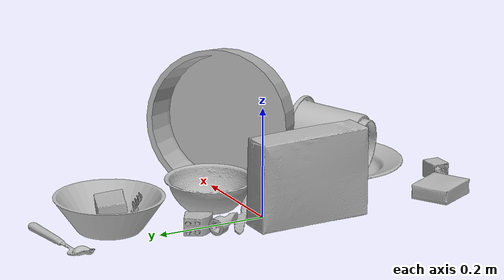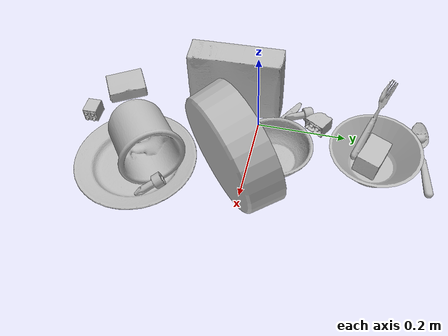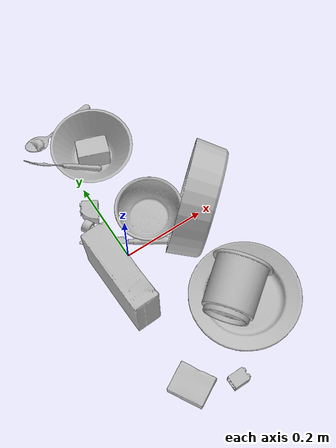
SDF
<sdf version="1.4">
  <world name="default">
    <light name="light1" type="point">
      <pose>0 0 1 0 0 0</pose>
      <diffuse>3 3 3 1</diffuse>
      <specular>3 3 3 1</specular>
    </light>
    <light name="light2" type="point">
      <pose>0 0.5 2 0 0 0</pose>
      <diffuse>1 1 1 1</diffuse>
      <specular>1 1 1 1</specular>
    </light>
    <light name="light3" type="point">
      <pose>0 0.5 2 0 0 0</pose>
      <diffuse>3 3 3 1</diffuse>
      <specular>3 3 3 1</specular>
    </light>
    <scene>
      <ambient>0.7 0.7 0.7</ambient>
    </scene>
    <model name="plate1">
      <link name="link_plate1">
        <collision name="default">
          <geometry>
            <mesh>
              <uri>model://plate/collision_meshes/collision.obj</uri>
              <scale>1.0 1.0 1.0</scale>
            </mesh>
          </geometry>
          <surface>
            <friction>
              <ode>
                <mu>0.5</mu>
                <mu2>0.5</mu2>
              </ode>
            </friction>
          <contact>
        <ode>
            <max_vel>0</max_vel>
            <min_depth>0.0001</min_depth>
            <kp>1e8</kp>
        </ode>
    </contact></surface>
        </collision>
        <visual name="default">
          <geometry>
            <mesh>
              <uri>model://plate/visual_meshes/visual.dae</uri>
              <scale>1.0 1.0 1.0</scale>
            </mesh>
          </geometry>
        </visual>
        <inertial>
          <mass>0.20059238374233246</mass>
          <pose>-0.0006044621695764363 0.00027825910365208983 -0.001056200242601335 0.002218800652723057 -0.0032254723094637602 0.45260588699646775</pose>
          <inertia>
            <ixx>0.00093837525</ixx>
            <iyy>0.0009294</iyy>
            <izz>0.0018353215</izz>
            <ixy>0</ixy>
            <ixz>0</ixz>
            <iyz>0</iyz>
          </inertia>
        </inertial>
      </link>
      <pose>0.1678459495306015 -0.2338000237941742 0.013734722509980202 -3.876773330593613e-05 -7.573728613792608e-05 0.5526787614015215</pose>
    </model>
    <model name="plate2">
      <link name="link_plate2">
        <collision name="default">
          <geometry>
            <mesh>
              <uri>model://pan_tefal/collision_meshes/collision.obj</uri>
              <scale>1.0 1.0 1.0</scale>
            </mesh>
          </geometry>
          <surface>
            <friction>
              <ode>
                <mu>0.5</mu>
                <mu2>0.5</mu2>
              </ode>
            </friction>
          <contact>
        <ode>
            <max_vel>0</max_vel>
            <min_depth>0.0001</min_depth>
            <kp>1e8</kp>
        </ode>
    </contact></surface>
        </collision>
        <visual name="default">
          <geometry>
            <mesh>
              <uri>model://pan_tefal/visual_meshes/visual.dae</uri>
              <scale>1.0 1.0 1.0</scale>
            </mesh>
          </geometry>
        </visual>
        <inertial>
          <mass>0.5801199674606323</mass>
          <pose>-0.00018002555589191616 3.279062366345897e-05 -0.008514936082065105 0.0008190222895173471 -0.0003301392673675887 -0.3318501085377774</pose>
          <inertia>
            <ixx>0.00400454</ixx>
            <iyy>0.004030358</iyy>
            <izz>0.0073715877</izz>
            <ixy>0</ixy>
            <ixz>0</ixz>
            <iyz>0</iyz>
          </inertia>
        </inertial>
      </link>
      <pose>0.1804235428571701 -0.014459180645644665 0.12842433154582977 1.4487375010070391 -0.42360363049310845 -2.34043893500832</pose>
    </model>
    <model name="bowl1">
      <link name="link_bowl1">
        <collision name="default">
          <geometry>
            <mesh>
              <uri>model://bowl/collision_meshes/collision.obj</uri>
              <scale>1.0 1.0 1.0</scale>
            </mesh>
          </geometry>
          <surface>
            <friction>
              <ode>
                <mu>0.5</mu>
                <mu2>0.5</mu2>
              </ode>
            </friction>
          <contact>
        <ode>
            <max_vel>0</max_vel>
            <min_depth>0.0001</min_depth>
            <kp>1e8</kp>
        </ode>
    </contact></surface>
        </collision>
        <visual name="default">
          <geometry>
            <mesh>
              <uri>model://bowl/visual_meshes/visual.dae</uri>
              <scale>1.0 1.0 1.0</scale>
            </mesh>
          </geometry>
        </visual>
        <inertial>
          <mass>0.055578216910362244</mass>
          <pose>0.00020445502013899386 -0.0010302060982212424 -0.000804265437182039 -0.015764048263850368 0.014546844804774466 0.7140432473852318</pose>
          <inertia>
            <ixx>0.00012766755</ixx>
            <iyy>0.000124815</iyy>
            <izz>0.00021478078</izz>
            <ixy>0</ixy>
            <ixz>0</ixz>
            <iyz>0</iyz>
          </inertia>
        </inertial>
      </link>
      <pose>0.09445960819721222 0.055654194205999374 0.027779996395111084 5.964737725962783e-07 7.289100004494429e-07 1.3221657380270677</pose>
    </model>
    <model name="bowl2">
      <link name="link_bowl2">
        <collision name="default">
          <geometry>
            <mesh>
              <uri>model://bowl_a/collision_meshes/collision.obj</uri>
              <scale>1.0 1.0 1.0</scale>
            </mesh>
          </geometry>
          <surface>
            <friction>
              <ode>
                <mu>0.5</mu>
                <mu2>0.5</mu2>
              </ode>
            </friction>
          <contact>
        <ode>
            <max_vel>0</max_vel>
            <min_depth>0.0001</min_depth>
            <kp>1e8</kp>
        </ode>
    </contact></surface>
        </collision>
        <visual name="default">
          <geometry>
            <mesh>
              <uri>model://bowl_a/visual_meshes/visual.dae</uri>
              <scale>1.0 1.0 1.0</scale>
            </mesh>
          </geometry>
        </visual>
        <inertial>
          <mass>0.31475314497947693</mass>
          <pose>0.00027867438620887697 4.730821092380211e-05 -0.0013765294570475817 -0.0009805369688078041 -0.0010938258688624044 -0.19123886294168949</pose>
          <inertia>
            <ixx>0.00089611666</ixx>
            <iyy>0.00090161816</iyy>
            <izz>0.0015937777</izz>
            <ixy>0</ixy>
            <ixz>0</ixz>
            <iyz>0</iyz>
          </inertia>
        </inertial>
      </link>
      <pose>0.066396065056324 0.2646571099758148 0.030382998287677765 3.533797206679152e-09 -2.0458433619709338e-08 0.6996840906235885</pose>
    </model>
    <model name="silverware1">
      <link name="link_silverware1">
        <collision name="default">
          <geometry>
            <mesh>
              <uri>model://spoon/collision_meshes/collision.obj</uri>
              <scale>1.0 1.0 1.0</scale>
            </mesh>
          </geometry>
          <surface>
            <friction>
              <ode>
                <mu>0.5</mu>
                <mu2>0.5</mu2>
              </ode>
            </friction>
          <contact>
        <ode>
            <max_vel>0</max_vel>
            <min_depth>0.0001</min_depth>
            <kp>1e8</kp>
        </ode>
    </contact></surface>
        </collision>
        <visual name="default">
          <geometry>
            <mesh>
              <uri>model://spoon/visual_meshes/visual.dae</uri>
              <scale>1.0 1.0 1.0</scale>
            </mesh>
          </geometry>
        </visual>
        <inertial>
          <mass>0.019504988566040993</mass>
          <pose>-0.005526313092559576 -0.0016034174477681518 -0.0007271654321812093 0.03521671064592188 -0.039065845080026425 0.006150613244710899</pose>
          <inertia>
            <ixx>1.0848988e-06</ixx>
            <iyy>7.421582e-05</iyy>
            <izz>7.4750846e-05</izz>
            <ixy>0</ixy>
            <ixz>0</ixz>
            <iyz>0</iyz>
          </inertia>
        </inertial>
      </link>
      <pose>0.03138325735926628 0.37030771374702454 0.00838526152074337 0.006731844887473512 0.026892970819837405 -3.0073849561555397</pose>
    </model>
    <model name="box1">
      <link name="link_box1">
        <collision name="default">
          <geometry>
            <mesh>
              <uri>model://cracker_box/collision_meshes/collision.obj</uri>
              <scale>1.0 1.0 1.0</scale>
            </mesh>
          </geometry>
          <surface>
            <friction>
              <ode>
                <mu>0.5</mu>
                <mu2>0.5</mu2>
              </ode>
            </friction>
          <contact>
        <ode>
            <max_vel>0</max_vel>
            <min_depth>0.0001</min_depth>
            <kp>1e8</kp>
        </ode>
    </contact></surface>
        </collision>
        <visual name="default">
          <geometry>
            <mesh>
              <uri>model://cracker_box/visual_meshes/visual.dae</uri>
              <scale>1.0 1.0 1.0</scale>
            </mesh>
          </geometry>
        </visual>
        <inertial>
          <mass>2.5078790187835693</mass>
          <pose>0.0009464150061830878 0.00025434247800149024 -0.0017029535956680775 -0.00031620768203149627 -0.01110648960041945 0.002546794303792924</pose>
          <inertia>
            <ixx>0.0063789245</ixx>
            <iyy>0.010532858</iyy>
            <izz>0.015031353</izz>
            <ixy>0</ixy>
            <ixz>0</ixz>
            <iyz>0</iyz>
          </inertia>
        </inertial>
      </link>
      <pose>-0.049366649240255356 -0.06085648015141487 0.08175771683454514 1.5452336759654575 0.009040426726873708 1.616932491195983</pose>
    </model>
    <model name="box2">
      <link name="link_box2">
        <collision name="default">
          <geometry>
            <mesh>
              <uri>model://gelatin_box/collision_meshes/collision.obj</uri>
              <scale>1.0 1.0 1.0</scale>
            </mesh>
          </geometry>
          <surface>
            <friction>
              <ode>
                <mu>0.5</mu>
                <mu2>0.5</mu2>
              </ode>
            </friction>
          <contact>
        <ode>
            <max_vel>0</max_vel>
            <min_depth>0.0001</min_depth>
            <kp>1e8</kp>
        </ode>
    </contact></surface>
        </collision>
        <visual name="default">
          <geometry>
            <mesh>
              <uri>model://gelatin_box/visual_meshes/visual.dae</uri>
              <scale>1.0 1.0 1.0</scale>
            </mesh>
          </geometry>
        </visual>
        <inertial>
          <mass>0.1847851723432541</mass>
          <pose>0.0004319618456065655 0.00011156872642459348 -0.0003640321083366871 -0.001050372098056681 -0.004755818221834168 0.016440563197305347</pose>
          <inertia>
            <ixx>0.00013044327</ixx>
            <iyy>9.317494e-05</iyy>
            <izz>0.0001985637</izz>
            <ixy>0</ixy>
            <ixz>0</ixz>
            <iyz>0</iyz>
          </inertia>
        </inertial>
      </link>
      <pose>-0.0464191809296608 -0.3370116949081421 0.015168312937021255 0.0055974887946016 -0.007304574514484403 0.5136185653505996</pose>
    </model>
    <model name="cup1">
      <link name="link_cup1">
        <collision name="default">
          <geometry>
            <mesh>
              <uri>model://d_cups/collision_meshes/collision.obj</uri>
              <scale>2.0 2.0 2.0</scale>
            </mesh>
          </geometry>
          <surface>
            <friction>
              <ode>
                <mu>0.5</mu>
                <mu2>0.5</mu2>
              </ode>
            </friction>
          <contact>
        <ode>
            <max_vel>0</max_vel>
            <min_depth>0.0001</min_depth>
            <kp>1e8</kp>
        </ode>
    </contact></surface>
        </collision>
        <visual name="default">
          <geometry>
            <mesh>
              <uri>model://d_cups/visual_meshes/visual.dae</uri>
              <scale>2.0 2.0 2.0</scale>
            </mesh>
          </geometry>
        </visual>
        <inertial>
          <mass>0.47328615188598633</mass>
          <pose>0.0016136143822222948 0.0038234798703342676 -0.004533303435891867 0.24012870248045765 -0.247092443015796 0.5942312682521343</pose>
          <inertia>
            <ixx>0.0015850074</ixx>
            <iyy>0.0015804201</iyy>
            <izz>0.0014347013</izz>
            <ixy>0</ixy>
            <ixz>0</ixz>
            <iyz>0</iyz>
          </inertia>
        </inertial>
      </link>
      <pose>0.14520491659641266 -0.2186606377363205 0.06822910159826279 -1.432983983942927 0.7886659534497612 -0.8064784822415616</pose>
    </model>
    <model name="silverware2">
      <link name="link_silverware2">
        <collision name="default">
          <geometry>
            <mesh>
              <uri>model://knife/collision_meshes/collision.obj</uri>
              <scale>1.0 1.0 1.0</scale>
            </mesh>
          </geometry>
          <surface>
            <friction>
              <ode>
                <mu>0.5</mu>
                <mu2>0.5</mu2>
              </ode>
            </friction>
          <contact>
        <ode>
            <max_vel>0</max_vel>
            <min_depth>0.0001</min_depth>
            <kp>1e8</kp>
        </ode>
    </contact></surface>
        </collision>
        <visual name="default">
          <geometry>
            <mesh>
              <uri>model://knife/visual_meshes/visual.dae</uri>
              <scale>1.0 1.0 1.0</scale>
            </mesh>
          </geometry>
        </visual>
        <inertial>
          <mass>0.03430156037211418</mass>
          <pose>-0.02378525398671627 0.0015275129117071629 5.062017953605391e-05 0.07305950900181668 0.01724842494985857 -0.007409825116106198</pose>
          <inertia>
            <ixx>9.736174e-07</ixx>
            <iyy>0.00013178105</iyy>
            <izz>0.00013209462</izz>
            <ixy>0</ixy>
            <ixz>0</ixz>
            <iyz>0</iyz>
          </inertia>
        </inertial>
      </link>
      <pose>0.013300938531756401 0.03295062482357025 0.0079438341781497 0.010033024164609636 -0.014362051872520482 2.586999001364515</pose>
    </model>
    <model name="silverware3">
      <link name="link_silverware3">
        <collision name="default">
          <geometry>
            <mesh>
              <uri>model://fork/collision_meshes/collision.obj</uri>
              <scale>1.0 1.0 1.0</scale>
            </mesh>
          </geometry>
          <surface>
            <friction>
              <ode>
                <mu>0.5</mu>
                <mu2>0.5</mu2>
              </ode>
            </friction>
          <contact>
        <ode>
            <max_vel>0</max_vel>
            <min_depth>0.0001</min_depth>
            <kp>1e8</kp>
        </ode>
    </contact></surface>
        </collision>
        <visual name="default">
          <geometry>
            <mesh>
              <uri>model://fork/visual_meshes/visual.dae</uri>
              <scale>1.0 1.0 1.0</scale>
            </mesh>
          </geometry>
        </visual>
        <inertial>
          <mass>0.014111565425992012</mass>
          <pose>-0.02957005426287651 0.0004658825055230409 0.00032188615296036005 -0.01355195006397287 -0.010977841645129428 0.014453906946454091</pose>
          <inertia>
            <ixx>4.9469025e-07</ixx>
            <iyy>3.684124e-05</iyy>
            <izz>3.7062495e-05</izz>
            <ixy>0</ixy>
            <ixz>0</ixz>
            <iyz>0</iyz>
          </inertia>
        </inertial>
      </link>
      <pose>-0.01598489284515381 0.25333911180496216 0.0590425506234169 0.9873544526141527 -0.5131226395122399 2.7672926926853294</pose>
    </model>
    <model name="toy1">
      <link name="link_toy1">
        <collision name="default">
          <geometry>
            <mesh>
              <uri>model://b_lego_duplo/collision_meshes/collision.obj</uri>
              <scale>1.0 1.0 1.0</scale>
            </mesh>
          </geometry>
          <surface>
            <friction>
              <ode>
                <mu>0.5</mu>
                <mu2>0.5</mu2>
              </ode>
            </friction>
          <contact>
        <ode>
            <max_vel>0</max_vel>
            <min_depth>0.0001</min_depth>
            <kp>1e8</kp>
        </ode>
    </contact></surface>
        </collision>
        <visual name="default">
          <geometry>
            <mesh>
              <uri>model://b_lego_duplo/visual_meshes/visual.dae</uri>
              <scale>1.0 1.0 1.0</scale>
            </mesh>
          </geometry>
        </visual>
        <inertial>
          <mass>0.029451588168740273</mass>
          <pose>-0.00011053002526750788 -9.152366146736313e-06 0.0019294293597340584 -0.03749525813168218 -0.026353287435260622 0.45191626186006195</pose>
          <inertia>
            <ixx>6.0274892e-06</ixx>
            <iyy>6.0680068e-06</iyy>
            <izz>5.3702943e-06</izz>
            <ixy>0</ixy>
            <ixz>0</ixz>
            <iyz>0</iyz>
          </inertia>
        </inertial>
      </link>
      <pose>0.049030862748622894 -0.3825819790363312 0.0161211546510458 1.5723694204577692 -0.012008396274119952 1.5892213809016995</pose>
    </model>
    <model name="toy2">
      <link name="link_toy2">
        <collision name="default">
          <geometry>
            <mesh>
              <uri>model://foam_brick/collision_meshes/collision.obj</uri>
              <scale>1.0 1.0 1.0</scale>
            </mesh>
          </geometry>
          <surface>
            <friction>
              <ode>
                <mu>0.5</mu>
                <mu2>0.5</mu2>
              </ode>
            </friction>
          <contact>
        <ode>
            <max_vel>0</max_vel>
            <min_depth>0.0001</min_depth>
            <kp>1e8</kp>
        </ode>
    </contact></surface>
        </collision>
        <visual name="default">
          <geometry>
            <mesh>
              <uri>model://foam_brick/visual_meshes/visual.dae</uri>
              <scale>1.0 1.0 1.0</scale>
            </mesh>
          </geometry>
        </visual>
        <inertial>
          <mass>0.2443593144416809</mass>
          <pose>-0.0002522472059354186 0.00034584393142722547 -0.0002532101352699101 -0.2940184651969868 0.017274440266988163 -0.0007449890747987857</pose>
          <inertia>
            <ixx>0.00010674072</ixx>
            <iyy>0.00017041703</iyy>
            <izz>0.00017258283</izz>
            <ixy>0</ixy>
            <ixz>0</ixz>
            <iyz>0</iyz>
          </inertia>
        </inertial>
      </link>
      <pose>0.06542462855577469 0.26047518849372864 0.0320991650223732 3.0251344023255116 -0.0030857758382375746 -0.34219633686716266</pose>
    </model>
    <model name="toy3">
      <link name="link_toy3">
        <collision name="default">
          <geometry>
            <mesh>
              <uri>model://d_lego_duplo/collision_meshes/collision.obj</uri>
              <scale>1.0 1.0 1.0</scale>
            </mesh>
          </geometry>
          <surface>
            <friction>
              <ode>
                <mu>0.5</mu>
                <mu2>0.5</mu2>
              </ode>
            </friction>
          <contact>
        <ode>
            <max_vel>0</max_vel>
            <min_depth>0.0001</min_depth>
            <kp>1e8</kp>
        </ode>
    </contact></surface>
        </collision>
        <visual name="default">
          <geometry>
            <mesh>
              <uri>model://d_lego_duplo/visual_meshes/visual.dae</uri>
              <scale>1.0 1.0 1.0</scale>
            </mesh>
          </geometry>
        </visual>
        <inertial>
          <mass>0.033699363470077515</mass>
          <pose>0.002830563113093376 0.0001636613014852628 0.0008589802891947329 0.08010879334546937 -0.38355231252286476 0.0010296922462193392</pose>
          <inertia>
            <ixx>6.5236977e-06</ixx>
            <iyy>9.258897e-06</iyy>
            <izz>8.928908e-06</izz>
            <ixy>0</ixy>
            <ixz>0</ixz>
            <iyz>0</iyz>
          </inertia>
        </inertial>
      </link>
      <pose>-0.020997565239667892 0.13704845309257507 0.016382768750190735 -1.569574414857267 -0.0070474979768105715 1.039758168178398</pose>
    </model>
    <model name="toy4">
      <link name="link_toy4">
        <collision name="default">
          <geometry>
            <mesh>
              <uri>model://d_toy_airplane/collision_meshes/collision.obj</uri>
              <scale>1.0 1.0 1.0</scale>
            </mesh>
          </geometry>
          <surface>
            <friction>
              <ode>
                <mu>0.5</mu>
                <mu2>0.5</mu2>
              </ode>
            </friction>
          <contact>
        <ode>
            <max_vel>0</max_vel>
            <min_depth>0.0001</min_depth>
            <kp>1e8</kp>
        </ode>
    </contact></surface>
        </collision>
        <visual name="default">
          <geometry>
            <mesh>
              <uri>model://d_toy_airplane/visual_meshes/visual.dae</uri>
              <scale>1.0 1.0 1.0</scale>
            </mesh>
          </geometry>
        </visual>
        <inertial>
          <mass>0.016584575176239014</mass>
          <pose>9.410303027834743e-05 -5.809338472317904e-05 -0.01172809861600399 0.0002669776058846709 0.004678969238403601 0.5194647440200774</pose>
          <inertia>
            <ixx>4.9717323e-06</ixx>
            <iyy>4.975482e-06</iyy>
            <izz>1.5009987e-06</izz>
            <ixy>0</ixy>
            <ixz>0</ixz>
            <iyz>0</iyz>
          </inertia>
        </inertial>
      </link>
      <pose>0.22889573872089386 -0.18476437032222748 0.019293533638119698 3.0159598573675805 1.2249766541670726 2.0768368298836593</pose>
    </model>
    <model name="toy5">
      <link name="link_toy5">
        <collision name="default">
          <geometry>
            <mesh>
              <uri>model://e_toy_airplane/collision_meshes/collision.obj</uri>
              <scale>1.0 1.0 1.0</scale>
            </mesh>
          </geometry>
          <surface>
            <friction>
              <ode>
                <mu>0.5</mu>
                <mu2>0.5</mu2>
              </ode>
            </friction>
          <contact>
        <ode>
            <max_vel>0</max_vel>
            <min_depth>0.0001</min_depth>
            <kp>1e8</kp>
        </ode>
    </contact></surface>
        </collision>
        <visual name="default">
          <geometry>
            <mesh>
              <uri>model://e_toy_airplane/visual_meshes/visual.dae</uri>
              <scale>1.0 1.0 1.0</scale>
            </mesh>
          </geometry>
        </visual>
        <inertial>
          <mass>0.01714155077934265</mass>
          <pose>0.00011740483023459092 -2.2482887288788334e-05 -0.011187203228473663 0.005518467343725363 0.009228313895921611 0.15041273076279138</pose>
          <inertia>
            <ixx>5.2317982e-06</ixx>
            <iyy>5.178279e-06</iyy>
            <izz>1.5723607e-06</izz>
            <ixy>0</ixy>
            <ixz>0</ixz>
            <iyz>0</iyz>
          </inertia>
        </inertial>
      </link>
      <pose>-0.03188908100128174 0.0876469537615776 0.01696191355586052 -1.5226064104273138 -0.1511362208054225 -2.6514213210324025</pose>
    </model>
  <physics type="ode">
      <max_contacts>50</max_contacts>
      <ode>
        <solver>
          <type>quick</type>
          <iters>75</iters>
        </solver>
        <constraints>
          <contact_max_correcting_vel>0</contact_max_correcting_vel>
          <contact_surface_layer>0</contact_surface_layer>
        </constraints>
      </ode>
    </physics></world>
</sdf>
